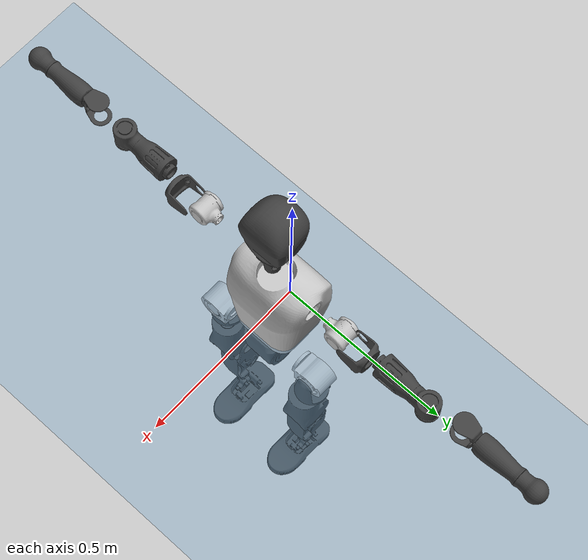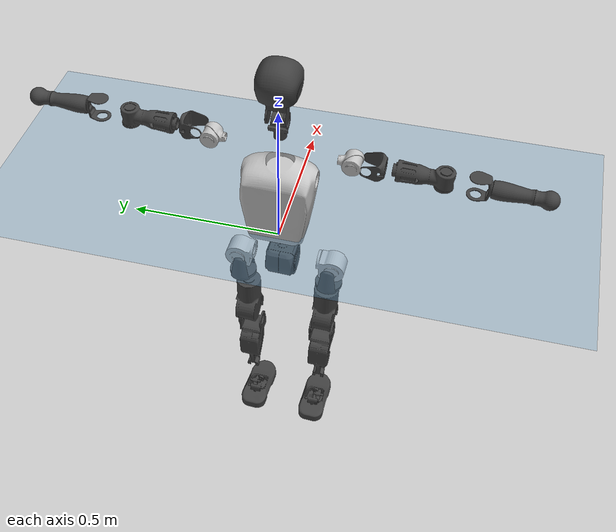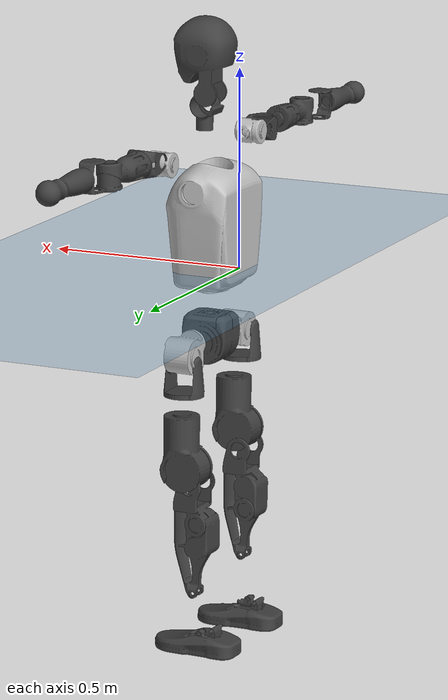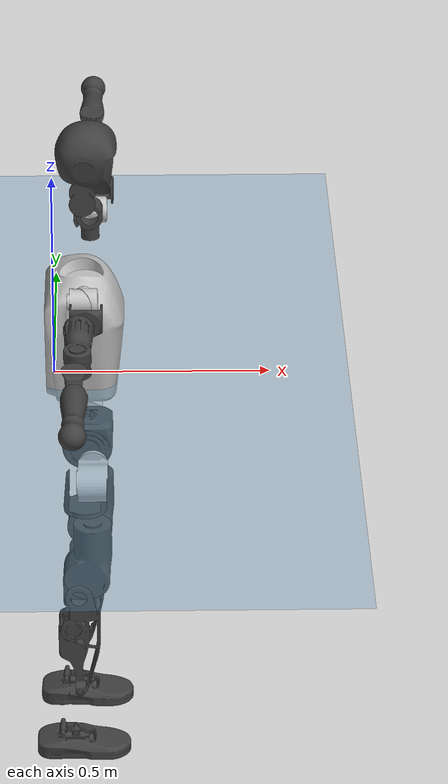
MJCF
<mujoco model="T1">
  <compiler angle="radian" assetdir="assets" balanceinertia="true" inertiafromgeom="false"/>

  <option timestep="0.005" density="1.2" viscosity="2e-05"/>

  <size nkey="1"/>

  <visual>
    <quality shadowsize="8192"/>
    <map shadowclip="0.5"/>
  </visual>

  <default>
    <default class="/">
      <joint armature="0.01" damping="0.01" frictionloss="0.1"/>
      <geom contype="0" conaffinity="0" group="1" solref="-1000 -80"/>
      <site size="0.01 0.005 0.005" group="5"/>
      <general forcelimited="true" biastype="affine" gainprm="25" biasprm="0 -25 -0.6"/>
      <default class="t1">
        <geom rgba="0.25 0.25 0.25 1"/>
        <default class="visual">
          <geom type="mesh" group="2"/>
        </default>
        <default class="collision">
          <geom group="3"/>
        </default>
        <default class="foot">
          <geom size="0.1115 0.05 0.015" type="box" condim="6" group="4" priority="1" solimp="0.015 1 0.015"/>
        </default>
        <default class="reward_collision_sphere">
          <geom group="5" rgba="1 0 0 1"/>
        </default>
      </default>
    </default>
  </default>

  <asset>
    <texture type="skybox" colorspace="auto" name="//unnamed_texture_0" builtin="gradient" rgb1="0.95 0.95 0.95" rgb2="0.95 0.95 0.95" width="100" height="600"/>
    <texture type="2d" colorspace="auto" name="texplane" builtin="checker" rgb1="0.345 0.575 0.748" rgb2="0.345 0.575 0.748" markrgb="1 1 1" width="512" height="512"/>
    <material name="MatPlane" class="/" texture="texplane" texuniform="true" texrepeat="2 2" specular="0.9"/>
    <mesh name="Trunk" class="/" file="Trunk.stl"/>
    <mesh name="H1" class="/" file="H1.stl"/>
    <mesh name="H2" class="/" file="H2.stl"/>
    <mesh name="AL1" class="/" file="AL1.stl"/>
    <mesh name="AL2" class="/" file="AL2.stl"/>
    <mesh name="AL3" class="/" file="AL3.stl"/>
    <mesh name="left_hand_link" class="/" file="left_hand_link.stl"/>
    <mesh name="AR1" class="/" file="AR1.stl"/>
    <mesh name="AR2" class="/" file="AR2.stl"/>
    <mesh name="AR3" class="/" file="AR3.stl"/>
    <mesh name="right_hand_link" class="/" file="right_hand_link.stl"/>
    <mesh name="Waist" class="/" file="Waist.stl"/>
    <mesh name="Hip_Pitch_Left" class="/" file="Hip_Pitch_Left.stl"/>
    <mesh name="Hip_Roll_Left" class="/" file="Hip_Roll_Left.stl"/>
    <mesh name="Hip_Yaw_Left" class="/" file="Hip_Yaw_Left.stl"/>
    <mesh name="Shank_Left" class="/" file="Shank_Left.stl"/>
    <mesh name="Ankle_Cross_Left" class="/" file="Ankle_Cross_Left.stl"/>
    <mesh name="left_foot_link" class="/" file="left_foot_link.stl"/>
    <mesh name="Hip_Pitch_Right" class="/" file="Hip_Pitch_Right.stl"/>
    <mesh name="Hip_Roll_Right" class="/" file="Hip_Roll_Right.stl"/>
    <mesh name="Hip_Yaw_Right" class="/" file="Hip_Yaw_Right.stl"/>
    <mesh name="Shank_Right" class="/" file="Shank_Right.stl"/>
    <mesh name="Ankle_Cross_Right" class="/" file="Ankle_Cross_Right.stl"/>
    <mesh name="right_foot_link" class="/" file="right_foot_link.stl"/>
  </asset>

  <worldbody>
    <geom name="floor" class="/" size="100 100 0.125" type="plane" group="0" material="MatPlane"/>
    <light name="toplight_shadow" class="/" pos="0 0 5" dir="0.0990148 0.0990148 -0.990148" type="directional" ambient="0.04 0.04 0.04" diffuse="0.55 0.55 0.55" specular="0.12 0.12 0.12"/>
    <light name="toplight_fill" class="/" pos="0 0 5" dir="0.0990148 0.0990148 -0.990148" type="directional" castshadow="false" ambient="0.04 0.04 0.04" diffuse="0.3 0.3 0.3" specular="0.08 0.08 0.08"/>
    <body name="trunk" childclass="t1" pos="0.0106744 0.0153048 -0.0121087" quat="0.99998 0.00416198 -0.00267044 -0.00392686">
      <inertial pos="0.0666924 0.00903165 0.140461" quat="0.999025 0.00910844 -0.0425162 -0.0076426" mass="35.3398" diaginertia="0.206263 0.604292 0.281373"/>
      <joint name="//unnamed_joint_0" type="free" armature="0" damping="0" frictionloss="0"/>
      <geom name="//unnamed_geom_1" class="visual" rgba="0.76 0.76 0.76 1" mesh="Trunk"/>
      <geom name="//unnamed_geom_2" class="collision" size="0.10692 0.14256 0.21384" pos="0.0720092 0 0.172932" type="box"/>
      <geom name="//unnamed_geom_3" class="reward_collision_sphere" size="0.163944" pos="0.0720092 0 0.14411"/>
      <geom name="//unnamed_geom_4" class="reward_collision_sphere" size="0.021384" pos="0.0720092 0.139021 0"/>
      <geom name="//unnamed_geom_5" class="reward_collision_sphere" size="0.021384" pos="0.0720092 -0.139021 0"/>
      <geom name="//unnamed_geom_6" class="reward_collision_sphere" size="0.021384" pos="0.0720092 0.175003 0.259397"/>
      <geom name="//unnamed_geom_7" class="reward_collision_sphere" size="0.021384" pos="0.0720092 -0.175003 0.259397"/>
      <site name="imu" pos="0.0661281 0.0838927 -0.0225135" size="0.014256"/>
      <camera name="track" pos="0 -3.27108 0" quat="0.707107 0.707107 0 0" mode="trackcom"/>
      <camera name="ego_camera" pos="0.146419 0 0.605261" quat="-0.5 -0.5 0.5 0.5"/>
      <body name="H1" pos="0.0779552 0.00555 0.35456" quat="0.999982 0.000479133 -0.00531197 0.00272799">
        <inertial pos="-0.0126688 -0.00776959 0.0699413" quat="0.747274 -0.054637 -0.0821344 0.657153" mass="1.23242" diaginertia="0.000493442 0.00194265 0.000971496"/>
        <joint name="AAHead_yaw" pos="0 0 0" axis="0.0572853 -0.061457 0.996464" stiffness="0.0200695" range="-1.30196 1.43806" armature="0.00487557" damping="0.00383606" frictionloss="0.242769"/>
        <geom name="//unnamed_geom_8" class="visual" mesh="H1"/>
        <body name="H2" pos="-0.0161502 0.00644766 0.09441" quat="0.999996 0.00141392 -0.00140117 0.00209574">
          <inertial pos="0.00320605 0.019989 0.14507" quat="0.988384 0.0990649 -0.048305 -0.104639" mass="2.18503" diaginertia="0.00565235 0.0331311 0.0132874"/>
          <joint name="Head_pitch" pos="0 0 0" axis="0.00942074 -0.997165 -0.0746605" stiffness="0.0544412" range="-1.08427 0.11723" armature="0.00887163" damping="0" frictionloss="0.215419"/>
          <geom name="//unnamed_geom_9" class="visual" mesh="H2"/>
          <geom name="//unnamed_geom_10" class="collision" size="0.114048" pos="0.0120015 0 0.158521"/>
          <geom name="//unnamed_geom_11" class="reward_collision_sphere" size="0.128304" pos="0.0240031 0 0.14411"/>
        </body>
      </body>
      <body name="AL1" pos="0.0819642 0.185999 0.308687" quat="0.99999 -0.000767156 0.00150898 -0.00421917">
        <inertial pos="-0.00720978 0.0644179 0.0180816" quat="0.576839 0.479713 -0.467106 0.467915" mass="1.15391" diaginertia="0.0026963 0.0121777 0.00149007"/>
        <joint name="Left_Shoulder_Pitch" pos="0 0 0" axis="-0.0105571 0.996669 0.0808611" range="-3.26864 1.43534" armature="0.0206882" damping="0.0398598" frictionloss="0.0959879"/>
        <geom name="//unnamed_geom_12" class="visual" rgba="0.76 0.76 0.76 1" mesh="AL1"/>
        <body name="AL2" pos="0.00888189 0.0915614 0.0157179" quat="0.999951 -0.0060528 -0.000472726 -0.00786445">
          <inertial pos="0.00241412 0.0813271 0.000620907" quat="0.494057 0.507914 -0.488672 0.509049" mass="0.470099" diaginertia="0.000956481 0.0045513 0.00110816"/>
          <joint name="Left_Shoulder_Roll" pos="0 0 0" axis="-0.995243 -0.036843 -0.0901841" stiffness="0.0906712" range="-1.91775 1.92227" armature="0.022388" damping="0.100442" frictionloss="0.0221025"/>
          <geom name="//unnamed_geom_13" class="visual" mesh="AL2"/>
          <body name="AL3" pos="-0.0132395 0.0800184 0.0060323" quat="0.999961 0.00567131 0.00668679 -0.000522225">
            <inertial pos="0.000846645 0.15546 0.00956803" quat="0.709636 0.701841 -0.0372668 -0.0494717" mass="2.56565" diaginertia="0.0350079 0.137338 0.00546958"/>
            <joint name="Left_Elbow_Pitch" pos="0 0 0" axis="0.0159839 -0.997064 -0.0748869" stiffness="0.0772394" range="-2.65765 2.63668" armature="0.001008" damping="0.101899" frictionloss="0.0376917"/>
            <geom name="//unnamed_geom_14" class="visual" mesh="AL3"/>
            <geom name="//unnamed_geom_15" class="collision" size="0.0427679 0.10692" pos="0 0.0817771 0" quat="0.707105 0.707108 0 0" type="cylinder"/>
            <geom name="//unnamed_geom_16" class="reward_collision_sphere" size="0.0513215"/>
            <body name="left_hand_link" pos="-0.0114129 0.243137 0.0177922" quat="0.999976 -0.00181425 -0.000492376 0.00659786">
              <inertial pos="0.0030965 0.176277 0.0159792" quat="0.697979 0.715539 -0.00295867 -0.0286421" mass="0.789363" diaginertia="0.017141 0.101676 0.00118346"/>
              <joint name="Left_Elbow_Yaw" pos="0 0 0" axis="0.0359181 0.0536862 0.997912" range="-2.46506 -0.0727433" armature="0.0201682" damping="0" frictionloss="0.0525399"/>
              <geom name="//unnamed_geom_17" class="visual" mesh="left_hand_link"/>
              <geom name="//unnamed_geom_18" class="collision" size="0.0427679 0.12474" pos="0 0.21262 0" quat="0.707105 0.707108 0 0" type="cylinder"/>
              <geom name="//unnamed_geom_19" class="reward_collision_sphere" size="0.0712799"/>
              <geom name="//unnamed_geom_20" class="reward_collision_sphere" size="0.0498959" pos="0 0.17991 0"/>
              <geom name="//unnamed_geom_21" class="reward_collision_sphere" size="0.0498959" pos="0 0.351642 0"/>
            </body>
          </body>
        </body>
      </body>
      <body name="AR1" pos="0.0641816 -0.183747 0.313861" quat="0.999985 0.00414977 -0.000835473 -0.00344501">
        <inertial pos="-0.00434666 -0.0566465 -0.0172514" quat="0.505696 0.511563 -0.488979 0.493431" mass="1.51725" diaginertia="0.00364242 0.0147519 0.00133803"/>
        <joint name="Right_Shoulder_Pitch" pos="0 0 0" axis="0.0146206 -0.999888 -0.00330754" range="-1.04364 3.32864" armature="0.0229494" damping="0" frictionloss="0.0866437"/>
        <geom name="//unnamed_geom_22" class="visual" rgba="0.76 0.76 0.76 1" mesh="AR1"/>
        <body name="AR2" pos="0.00628976 -0.0928265 -0.00477661" quat="0.999998 0.00207398 -3.54228e-05 -0.000325155">
          <inertial pos="0.00183486 -0.0613308 0.0180375" quat="0.529049 0.487173 -0.461493 0.519417" mass="0.350502" diaginertia="0.00104102 0.00439391 0.00117328"/>
          <joint name="Right_Shoulder_Roll" pos="0 0 0" axis="-0.999942 0.0106783 0.00119694" range="-1.55532 1.23781" armature="0.0132298" damping="0.0972056" frictionloss="0.127596"/>
          <geom name="//unnamed_geom_23" class="visual" mesh="AR2"/>
          <body name="AR3" pos="-0.0143511 -0.0924524 0.0132221" quat="0.999996 -0.00134996 -0.00212297 0.00128408">
            <inertial pos="-0.00996003 -0.127357 0.00691618" quat="0.703147 0.710918 0.00157223 -0.0133008" mass="2.42387" diaginertia="0.0290954 0.108124 0.00286569"/>
            <joint name="Right_Elbow_Pitch" pos="0 0 0" axis="-0.0441089 0.998746 -0.0236677" stiffness="0.0661894" range="-2.21977 2.31649" armature="0.00175684" damping="0" frictionloss="0.264597"/>
            <geom name="//unnamed_geom_24" class="visual" mesh="AR3"/>
            <geom name="//unnamed_geom_25" class="collision" size="0.0427679 0.10692" pos="0 -0.0817771 0" quat="0.707105 0.707108 0 0" type="cylinder"/>
            <geom name="//unnamed_geom_26" class="reward_collision_sphere" size="0.0513215"/>
            <body name="right_hand_link" pos="-0.00492585 -0.245719 0.00158087" quat="0.99998 0.00469661 -0.00358948 -0.00221061">
              <inertial pos="0.00855382 -0.174026 0.0197141" quat="0.710218 0.698031 -0.0110317 -0.0906745" mass="0.693219" diaginertia="0.0239844 0.0949681 0.00109183"/>
              <joint name="Right_Elbow_Yaw" pos="0 0 0" axis="-0.0370847 -0.0494978 0.998086" stiffness="0.0830189" range="0.345691 2.07168" armature="0.0203176" damping="0.0482221" frictionloss="0.079374"/>
              <geom name="//unnamed_geom_27" class="visual" mesh="right_hand_link"/>
              <geom name="//unnamed_geom_28" class="collision" size="0.0427679 0.12474" pos="0 -0.21262 0" quat="0.707105 0.707108 0 0" type="cylinder"/>
              <geom name="//unnamed_geom_29" class="reward_collision_sphere" size="0.0712799"/>
              <geom name="//unnamed_geom_30" class="reward_collision_sphere" size="0.0498959" pos="0 -0.17991 0"/>
              <geom name="//unnamed_geom_31" class="reward_collision_sphere" size="0.0498959" pos="0 -0.351642 0"/>
            </body>
          </body>
        </body>
      </body>
      <body name="Waist" pos="0.0636119 -0.0101036 -0.173253" quat="0.999987 0.00108679 -0.000432603 -0.00505633">
        <inertial pos="-0.00395159 -0.00406407 -0.00136208" quat="0.991218 -0.0116288 -0.128238 0.0300983" mass="8.73172" diaginertia="0.0159669 0.0665567 0.0305734"/>
        <joint name="Waist" pos="0 0 0" axis="-0.0484539 0.0671306 0.996567" stiffness="0.0979618" range="-1.60774 1.67486" armature="0.00733137" damping="0" frictionloss="0.2562"/>
        <geom name="//unnamed_geom_32" class="visual" mesh="Waist"/>
        <body name="Hip_Pitch_Left" pos="-0.00170297 0.156629 0.0101093" quat="0.999987 -0.00506582 -0.000748219 -0.000582368">
          <inertial pos="-0.017331 -0.0234166 -0.00944078" quat="0.956008 0.284494 0.0491291 -0.0519459" mass="2.51251" diaginertia="0.00433019 0.0167543 0.00695612"/>
          <joint name="Left_Hip_Pitch" pos="0 0 0" axis="-0.0400088 0.998401 0.0399379" stiffness="0.022385" range="-1.7594 1.22933" armature="0.0185852" damping="0.0898353" frictionloss="0.194018"/>
          <geom name="//unnamed_geom_33" class="visual" rgba="0.76 0.76 0.76 1" mesh="Hip_Pitch_Left"/>
          <body name="Hip_Roll_Left" pos="0.00316218 -0.00801225 -0.0457201" quat="0.99999 -0.00147834 -0.000744348 -0.00410475">
            <inertial pos="0.0149281 -0.0154645 -0.0733078" quat="0.704589 -0.0745399 0.0114431 0.705597" mass="1.23008" diaginertia="0.00416438 0.0263246 0.0039273"/>
            <joint name="Left_Hip_Roll" pos="0 0 0" axis="-0.998552 0.049764 0.0204348" stiffness="0.0331971" range="-1.49542 -0.0222425" armature="0.0112736" damping="0" frictionloss="0.24335"/>
            <geom name="//unnamed_geom_34" class="visual" mesh="Hip_Roll_Left"/>
            <geom name="//unnamed_geom_35" class="reward_collision_sphere" size="0.0784079"/>
            <body name="Hip_Yaw_Left" pos="0.0105272 -0.0147568 -0.132631" quat="0.999999 -0.00091731 0.000277012 0.000548329">
              <inertial pos="-0.00951285 0.00412432 -0.122152" quat="0.632299 -0.0138212 -0.0226901 0.774269" mass="8.56183" diaginertia="0.0751991 0.30927 0.0207895"/>
              <joint name="Left_Hip_Yaw" pos="0 0 0" axis="0.0784536 0.0361258 -0.996263" stiffness="0.0356811" range="-1.24356 1.30295" armature="0.0186673" damping="0.0178584" frictionloss="0.114972"/>
              <geom name="//unnamed_geom_36" class="visual" mesh="Hip_Yaw_Left"/>
              <geom name="//unnamed_geom_37" class="collision" size="0.0712799 0.114048" type="cylinder"/>
              <body name="Shank_Left" pos="-0.0315748 -0.0167495 -0.176851" quat="0.999997 0.00158581 0.00176911 -0.000539868">
                <inertial pos="-0.0149489 0.0188776 -0.180521" quat="0.995461 0.0208572 -0.0198023 0.0907174" mass="5.34453" diaginertia="0.0699035 0.401486 0.00937838"/>
                <joint name="Left_Knee_Pitch" pos="0 0 0" axis="0.00299972 0.999986 0.00439298" stiffness="0.0140297" range="-0.241726 2.30343" armature="0.0070476" damping="0" frictionloss="0.000936839"/>
                <geom name="//unnamed_geom_38" class="visual" mesh="Shank_Left"/>
                <geom name="//unnamed_geom_39" class="collision" size="0.0712799 0.10692" pos="0 0 -0.172932" type="cylinder"/>
                <geom name="//unnamed_geom_40" class="reward_collision_sphere" size="0.0926638"/>
                <body name="Ankle_Cross_Left" pos="-0.00923023 -0.00774358 -0.390195" quat="0.999999 0.000401695 -0.00110498 0.00109194">
                  <inertial pos="0.000657066 0.00540905 -0.0241458" quat="0.456984 0.571867 0.527434 0.431216" mass="0.308896" diaginertia="7.29169e-05 0.000460999 9.46417e-05"/>
                  <joint name="Left_Ankle_Pitch" pos="0 0 0" axis="0.0913815 0.995633 0.0190803" stiffness="0.0904846" range="-0.66977 0.515852" armature="0.013101" damping="0.000688046" frictionloss="0.224379"/>
                  <geom name="//unnamed_geom_41" class="visual" mesh="Ankle_Cross_Left"/>
                  <body name="left_foot_link" pos="0.00479694 -0.0121054 -0.0199006" quat="0.999956 7.43838e-05 0.005348 -0.00764851">
                    <inertial pos="-0.0178242 -0.00353933 -0.00261042" quat="0.048445 0.662681 -0.0228318 0.746984" mass="1.82104" diaginertia="0.00555445 0.0242233 0.0138321"/>
                    <joint name="Left_Ankle_Roll" pos="0 0 0" axis="-0.999307 0.0156419 -0.0337838" stiffness="0.0215722" range="-0.397233 0.685637" armature="0.0148347" damping="0.0776027" frictionloss="0.0699972"/>
                    <geom name="//unnamed_geom_42" class="visual" mesh="left_foot_link"/>
                    <geom name="left_foot" class="foot" size="0.0725982 0.0991189 0.0371958" pos="0.0120015 0 -0.0216165"/>
                    <geom name="//unnamed_geom_44" class="reward_collision_sphere" size="0.0741311" pos="0.0120015 0 -0.0216165"/>
                    <geom name="//unnamed_geom_45" class="reward_collision_sphere" size="0.0427679" pos="0.114015 -0.0376175 -0.0216165"/>
                    <geom name="//unnamed_geom_46" class="reward_collision_sphere" size="0.0427679" pos="-0.0840107 -0.0376175 -0.0216165"/>
                    <site name="left_foot" class="foot" pos="0.0120015 0 -0.0216165" size="0.014256"/>
                  </body>
                </body>
              </body>
            </body>
          </body>
        </body>
        <body name="Hip_Pitch_Right" pos="0.0153569 -0.178352 0.00843526" quat="0.999976 0.00574823 -0.000453472 0.00376484">
          <inertial pos="0.0132498 0.021489 -0.0415297" quat="0.974429 -0.223115 0.00371193 -0.0263564" mass="2.7524" diaginertia="0.00344111 0.0148567 0.00703752"/>
          <joint name="Right_Hip_Pitch" pos="0 0 0" axis="0.0133886 -0.999295 -0.0350767" range="-1.59735 1.89631" armature="0.0179699" damping="0.0707473" frictionloss="0.0406197"/>
          <geom name="//unnamed_geom_47" class="visual" rgba="0.76 0.76 0.76 1" mesh="Hip_Pitch_Right"/>
          <body name="Hip_Roll_Right" pos="-0.0161277 0.00909299 -0.017763" quat="1 -0.000805808 7.07654e-05 0.000252484">
            <inertial pos="0.0178532 0.0121207 -0.0623484" quat="0.718152 0.0435266 0.0222245 0.694168" mass="0.937566" diaginertia="0.00425271 0.0189356 0.00382729"/>
            <joint name="Right_Hip_Roll" pos="0 0 0" axis="-0.999034 -0.0233417 -0.0372223" stiffness="0.00257545" range="0.0551333 1.71247" armature="0.00507616" damping="0.0030782" frictionloss="0.227956"/>
            <geom name="//unnamed_geom_48" class="visual" mesh="Hip_Roll_Right"/>
            <geom name="//unnamed_geom_49" class="reward_collision_sphere" size="0.0784079"/>
            <body name="Hip_Yaw_Right" pos="0.0130307 0.00696804 -0.12313" quat="0.999997 -5.82927e-05 0.00192359 -0.00116499">
              <inertial pos="-0.00769813 0.0163817 -0.146709" quat="0.706039 0.00310199 -0.0396108 0.707057" mass="4.9533" diaginertia="0.0596496 0.188919 0.0151428"/>
              <joint name="Right_Hip_Yaw" pos="0 0 0" axis="-0.00899206 0.000278746 -0.99996" range="-0.886537 0.924903" armature="0.0273126" damping="0.0619339" frictionloss="0.195688"/>
              <geom name="//unnamed_geom_50" class="visual" mesh="Hip_Yaw_Right"/>
              <geom name="//unnamed_geom_51" class="collision" size="0.0712799 0.114048" type="cylinder"/>
              <body name="Shank_Right" pos="-0.0342337 0.000751049 -0.182809" quat="1 0.000399477 0.000857844 0.000165003">
                <inertial pos="-0.0256785 -0.0200762 -0.186571" quat="0.999386 0.0116511 0.0204736 0.0259429" mass="3.9976" diaginertia="0.0506063 0.353871 0.0108387"/>
                <joint name="Right_Knee_Pitch" pos="0 0 0" axis="0.0881063 -0.996074 0.00864169" stiffness="0.0448253" range="-2.29334 -0.0831339" armature="0.00852354" damping="0.00389475" frictionloss="0.0605685"/>
                <geom name="//unnamed_geom_52" class="visual" mesh="Shank_Right"/>
                <geom name="//unnamed_geom_53" class="collision" size="0.0712799 0.10692" pos="0 0 -0.172932" type="cylinder"/>
                <geom name="//unnamed_geom_54" class="reward_collision_sphere" size="0.0926638"/>
                <body name="Ankle_Cross_Right" pos="-0.0123665 -0.00935051 -0.402062" quat="0.99999 0.00208344 0.00390679 -0.000214179">
                  <inertial pos="-0.0145242 -0.0124999 -0.00881916" quat="0.466635 0.584074 0.513619 0.421076" mass="0.252638" diaginertia="5.9533e-05 0.000290262 8.22075e-05"/>
                  <joint name="Right_Ankle_Pitch" pos="0 0 0" axis="-0.0983252 -0.995096 -0.0107429" stiffness="0.0387842" range="-0.154566 0.774344" armature="0.00799666" damping="0.00315638" frictionloss="0.0762903"/>
                  <geom name="//unnamed_geom_55" class="visual" mesh="Ankle_Cross_Right"/>
                  <body name="right_foot_link" pos="0.00993326 0.0154546 -0.0322635" quat="0.999997 -0.000777496 0.00207961 -0.000831458">
                    <inertial pos="-0.0187382 0.00361551 -0.0265312" quat="-0.0182995 0.56828 -0.0310385 0.822046" mass="1.81576" diaginertia="0.00500005 0.0292033 0.0153222"/>
                    <joint name="Right_Ankle_Roll" pos="0 0 0" axis="-0.99698 0.07732 0.00727557" range="-0.466703 0.644366" armature="0.00658404" damping="0.0192297" frictionloss="0.267794"/>
                    <geom name="//unnamed_geom_56" class="visual" mesh="right_foot_link"/>
                    <geom name="right_foot" class="foot" size="0.0750235 0.0940191 0.031819" pos="0.0120015 0 -0.0216165"/>
                    <geom name="//unnamed_geom_58" class="reward_collision_sphere" size="0.0570239"/>
                    <geom name="//unnamed_geom_59" class="reward_collision_sphere" size="0.0427679" pos="0.0120015 0 -0.0216165"/>
                    <geom name="//unnamed_geom_60" class="reward_collision_sphere" size="0.0427679" pos="0.114015 0.0376175 -0.0216165"/>
                    <geom name="//unnamed_geom_61" class="reward_collision_sphere" size="0.0427679" pos="-0.0840107 0.0376175 -0.0216165"/>
                    <site name="right_foot" class="foot" pos="0.0120015 0 -0.0216165" size="0.014256"/>
                  </body>
                </body>
              </body>
            </body>
          </body>
        </body>
      </body>
    </body>
  </worldbody>

  <contact>
    <pair class="/" geom1="floor" geom2="left_foot" name="//unnamed_contact_0"/>
    <pair class="/" geom1="floor" geom2="right_foot" name="//unnamed_contact_1"/>
  </contact>

  <actuator>
    <general name="AAHead_yaw" class="/" joint="AAHead_yaw" forcerange="-16.211 16.211" gainprm="42.7118" biasprm="0 -42.7118 -0.759121"/>
    <general name="Head_pitch" class="/" joint="Head_pitch" forcerange="-6.18573 6.18573" gainprm="42.7118" biasprm="0 -42.7118 -0.759121"/>
    <general name="Left_Shoulder_Pitch" class="/" joint="Left_Shoulder_Pitch" forcerange="-21.5849 21.5849" gainprm="42.7118" biasprm="0 -42.7118 -0.759121"/>
    <general name="Left_Shoulder_Roll" class="/" joint="Left_Shoulder_Roll" forcerange="-15.1596 15.1596" gainprm="42.7118" biasprm="0 -42.7118 -0.759121"/>
    <general name="Left_Elbow_Pitch" class="/" joint="Left_Elbow_Pitch" forcerange="-11.223 11.223" gainprm="42.7118" biasprm="0 -42.7118 -0.759121"/>
    <general name="Left_Elbow_Yaw" class="/" joint="Left_Elbow_Yaw" forcerange="-7.68632 7.68632" gainprm="42.7118" biasprm="0 -42.7118 -0.759121"/>
    <general name="Right_Shoulder_Pitch" class="/" joint="Right_Shoulder_Pitch" forcerange="-25.7892 25.7892" gainprm="42.7118" biasprm="0 -42.7118 -0.759121"/>
    <general name="Right_Shoulder_Roll" class="/" joint="Right_Shoulder_Roll" forcerange="-11.1547 11.1547" gainprm="42.7118" biasprm="0 -42.7118 -0.759121"/>
    <general name="Right_Elbow_Pitch" class="/" joint="Right_Elbow_Pitch" forcerange="-13.2013 13.2013" gainprm="42.7118" biasprm="0 -42.7118 -0.759121"/>
    <general name="Right_Elbow_Yaw" class="/" joint="Right_Elbow_Yaw" forcerange="-39.5359 39.5359" gainprm="42.7118" biasprm="0 -42.7118 -0.759121"/>
    <general name="Waist" class="/" joint="Waist" forcerange="-41.7571 41.7571" gainprm="42.7118" biasprm="0 -42.7118 -0.759121"/>
    <general name="Left_Hip_Pitch" class="/" joint="Left_Hip_Pitch" forcerange="-33.7154 33.7154" gainprm="42.7118" biasprm="0 -42.7118 -0.759121"/>
    <general name="Left_Hip_Roll" class="/" joint="Left_Hip_Roll" forcerange="-53.6651 53.6651" gainprm="42.7118" biasprm="0 -42.7118 -0.759121"/>
    <general name="Left_Hip_Yaw" class="/" joint="Left_Hip_Yaw" forcerange="-27.7477 27.7477" gainprm="42.7118" biasprm="0 -42.7118 -0.759121"/>
    <general name="Left_Knee_Pitch" class="/" joint="Left_Knee_Pitch" forcerange="-88.992 88.992" gainprm="42.7118" biasprm="0 -42.7118 -0.759121"/>
    <general name="Left_Ankle_Pitch" class="/" joint="Left_Ankle_Pitch" forcerange="-19.2293 19.2293" gainprm="42.7118" biasprm="0 -42.7118 -0.759121"/>
    <general name="Left_Ankle_Roll" class="/" joint="Left_Ankle_Roll" forcerange="-21.9023 21.9023" gainprm="42.7118" biasprm="0 -42.7118 -0.759121"/>
    <general name="Right_Hip_Pitch" class="/" joint="Right_Hip_Pitch" forcerange="-76.5204 76.5204" gainprm="42.7118" biasprm="0 -42.7118 -0.759121"/>
    <general name="Right_Hip_Roll" class="/" joint="Right_Hip_Roll" forcerange="-45.0907 45.0907" gainprm="42.7118" biasprm="0 -42.7118 -0.759121"/>
    <general name="Right_Hip_Yaw" class="/" joint="Right_Hip_Yaw" forcerange="-36.0707 36.0707" gainprm="42.7118" biasprm="0 -42.7118 -0.759121"/>
    <general name="Right_Knee_Pitch" class="/" joint="Right_Knee_Pitch" forcerange="-122.848 122.848" gainprm="42.7118" biasprm="0 -42.7118 -0.759121"/>
    <general name="Right_Ankle_Pitch" class="/" joint="Right_Ankle_Pitch" forcerange="-44.4831 44.4831" gainprm="42.7118" biasprm="0 -42.7118 -0.759121"/>
    <general name="Right_Ankle_Roll" class="/" joint="Right_Ankle_Roll" forcerange="-11.0995 11.0995" gainprm="42.7118" biasprm="0 -42.7118 -0.759121"/>
  </actuator>

  <sensor>
    <gyro site="imu" name="imu_angular_velocity"/>
    <velocimeter site="imu" name="imu_linear_velocity"/>
    <framelinvel objtype="site" objname="left_foot" name="left_foot_global_linear_velocity"/>
    <framelinvel objtype="site" objname="right_foot" name="right_foot_global_linear_velocity"/>
  </sensor>

  <keyframe>
    <key name="home" qpos="0 0 0.6385 1 0 0 0 0 0 0 1.4 0 -0.4 0 -1.4 0 0.4 0 -0.4 0 0 0.8 -0.4 0 0.4 0 0 -0.8 0.4 0"/>
  </keyframe>
</mujoco>
